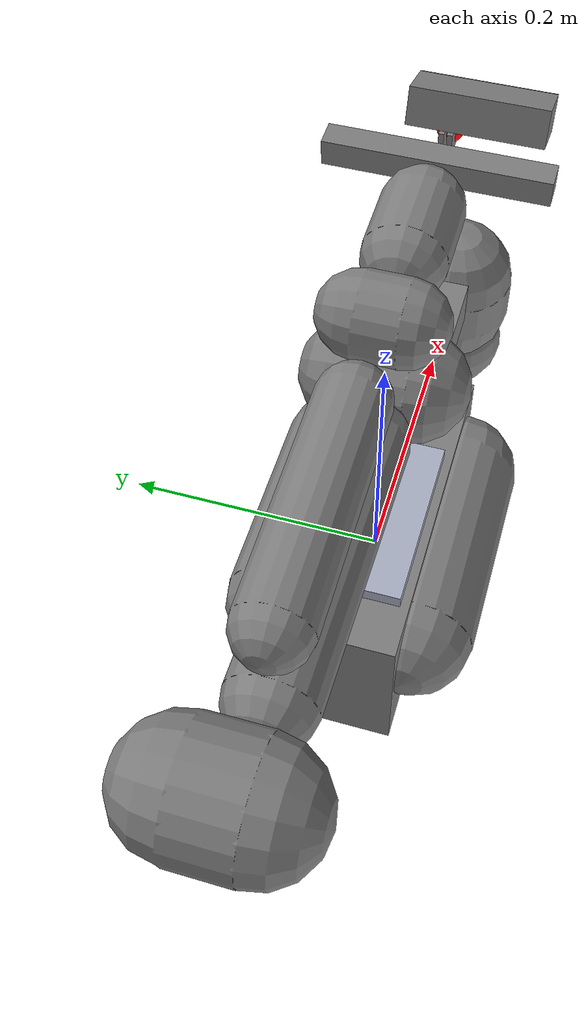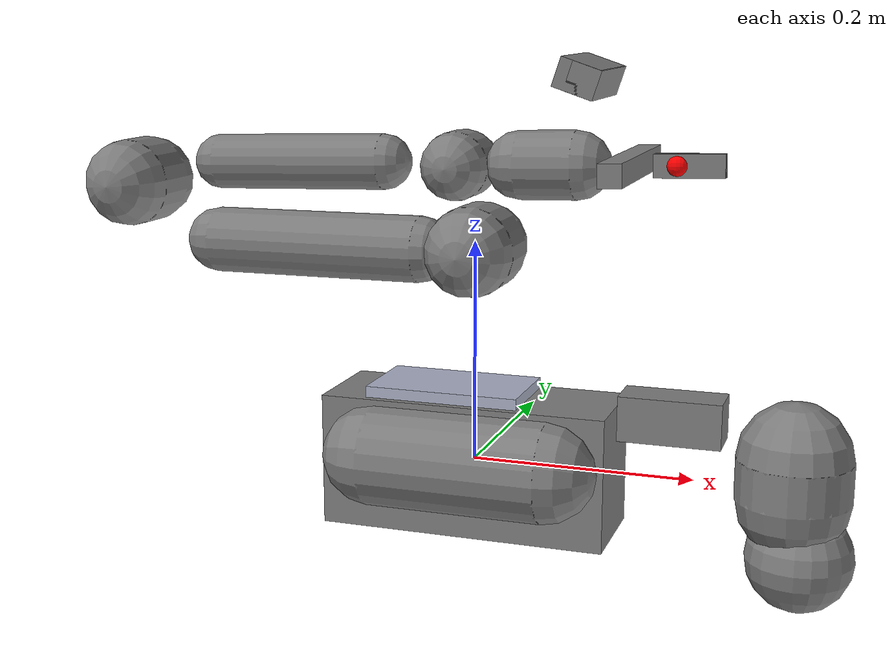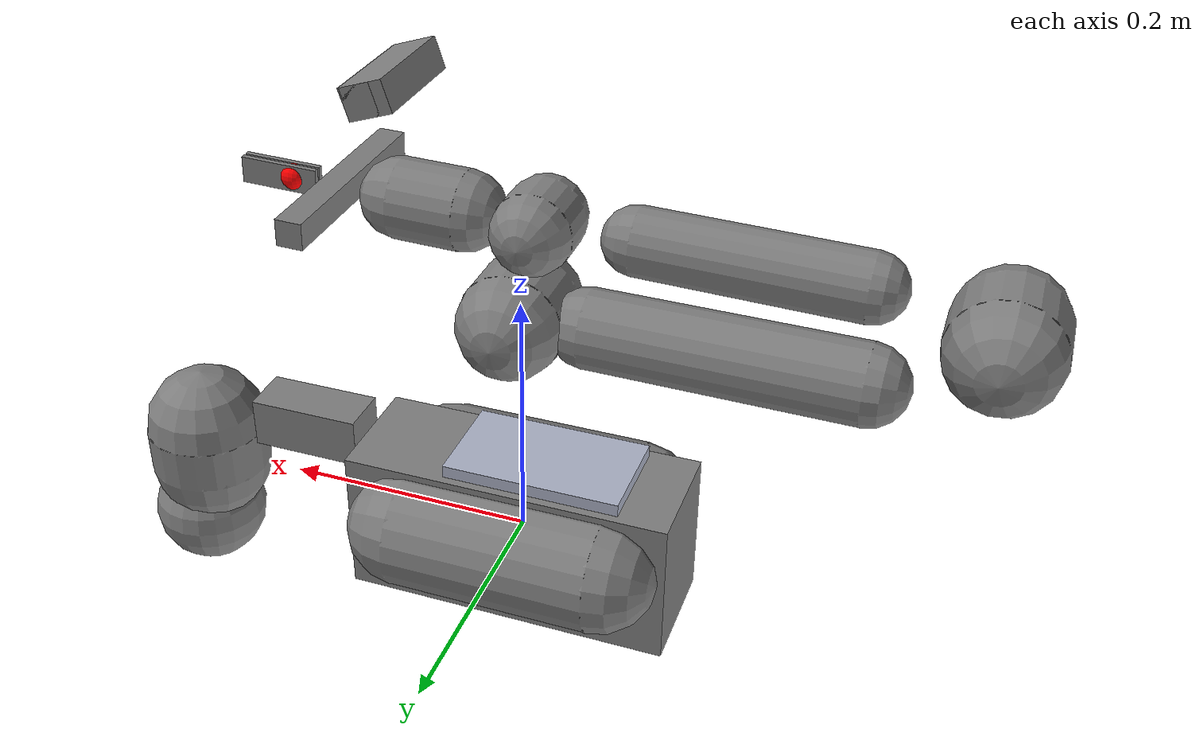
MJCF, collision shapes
<mujoco model="go2_description">
    <compiler angle="radian" autolimits="true"/>

    <option cone="elliptic" impratio="100"/>

    <default>
        <default class="go2">
            <joint axis="0 1 0"/>
            <geom friction="0.6" margin="0.001"/>

            <default class="visual">
                <geom type="mesh" contype="0" conaffinity="0" group="2"/>
            </default>
            <default class="collision">
                <geom group="3"/>
            </default>
        </default>

    </default>

    <asset>
        <material name="metal" rgba=".9 .95 .95 1"/>
        <material name="black" rgba="0 0 0 1"/>
        <material name="white" rgba="1 1 1 1"/>
        <material name="gray" rgba="0.671705 0.692426 0.774270 1"/>

        <mesh file="go2/assets/base_0.obj"/>
        <mesh file="go2/assets/base_1.obj"/>
        <mesh file="go2/assets/base_2.obj"/>
        <mesh file="go2/assets/base_3.obj"/>
        <mesh file="go2/assets/base_4.obj"/>
        <mesh name="base_link" file="piper_l/assets/base_link.STL"/>
        <mesh name="link1" file="piper_l/assets/link1.STL"/>
        <mesh name="link2" file="piper_l/assets/link2.STL"/>
        <mesh name="link3" file="piper_l/assets/link3.STL"/>
        <mesh name="link4" file="piper_l/assets/link4.STL"/>
        <mesh name="link5" file="piper_l/assets/link5.STL"/>
        <mesh name="link7" file="piper_l/assets/link7.STL"/>
        <mesh name="link8" file="piper_l/assets/link8.STL"/>
        <mesh name="gripper_base_100_v3" file="piper_l/assets/gripper_base_100_v3.STL"/>
        <mesh name="realsense_mid_stand_v2" content_type="model/stl" file="piper_l/assets/realsense_mid_stand_v2.STL"/>
    </asset>

    <worldbody>
        <body name="base" pos="0 0 0.0" childclass="go2">
            <inertial pos="0.021112 0 -0.005366" quat="-0.000543471 0.713435 -0.00173769 0.700719" mass="6.921"
                      diaginertia="0.107027 0.0980771 0.0244531"/>

            <geom mesh="base_0" material="black" class="visual"/>
            <geom mesh="base_1" material="black" class="visual"/>
            <geom mesh="base_2" material="black" class="visual"/>
            <geom mesh="base_3" material="white" class="visual"/>
            <geom mesh="base_4" material="gray" class="visual"/>
            <geom size="0.07 0.04 0.01" pos="-0.02 0.0 0.06" material="gray" type="box" class="visual"/>

            <geom name="base_collision1" size="0.13 0.04675 0.06" type="box" class="collision"/>
            <geom name="base_collision2" size="0.07 0.04 0.01" pos="-0.02 0.0 0.06" type="box" class="collision"/>
            <geom name="base_collision3" size="0.045 0.02 0.02" pos="0.18 0.0 0.055" type="box" class="collision"/>
            <geom name="base_collision4" size="0.045 0.08" pos="0.0 0.05 0.01" quat="0.707107 0 0.707107 0" type="capsule" class="collision"/>
            <geom name="base_collision5" size="0.045 0.08" pos="0.0 -0.05 0.01" quat="0.707107 0 0.707107 0" type="capsule" class="collision"/>

            <geom name="base_collision6" size="0.05 0.018" pos="0.285 0 0.01" type="capsule" class="collision"/>
            <geom name="base_collision7" size="0.047" pos="0.293 0 -0.06" class="collision"/>

            <joint axis="0 1 0" name="basepitch" pos="0 0 0" type="hinge" range="-0.2 0.2"/>
            <joint axis="0 0 1" name="basez" pos="0 0 0" type="slide" range="-0.1 0.1"/>

            <!-- piper_l arm (from piper_l/piper_l.xml) -->
            <geom pos="0 0 0.07" quat="0.999994 0.000457118 0.00346448 0" class="visual" material="gray" mesh="base_link"/>
            <body name="link1" pos="0.000852257 -0.00011245 0.192997" quat="0.999994 0.000457118 0.00346448 0">
              <inertial pos="-0.000108818 0.000607029 -0.00538686" quat="0.701411 0.712748 -0.000102414 -0.00362695" mass="0.71" diaginertia="0.000458361 0.000409985 0.000334505"/>
              <joint name="joint1" pos="0 0 0" axis="0 0 1" range="-2.618 2.618" armature="0.2380" damping="0.5000" frictionloss="0.5000"/>
              <geom class="visual" material="gray" mesh="link1"/>

              <body name="link2" quat="0.047971 -0.0479709 -0.705478 -0.705478">
                <inertial pos="0.258453 -0.00907882 0.00209824" quat="0.33951 0.630002 0.324014 0.618745" mass="1.16404" diaginertia="0.0162743 0.0162573 0.000956571"/>
                <joint name="joint2" pos="0 0 0" axis="0 0 1" range="0 3.14" armature="0.2069" damping="0.5000" frictionloss="0.5000"/>
                <geom class="visual" material="gray" mesh="link2"/>
                <geom name="link2_collision1" class="collision" size="0.04 0.02" quat="0.707107 0 0 0.707107" type="capsule"/>
                <geom name="link2_collision2" class="collision" size="0.03 0.1" pos="0.15 -0.025 0" quat="0.703163 0 0.703163 -0.105474" type="capsule"/>

                <body name="link3" pos="0.33823 0 0" quat="0.624016 0 0 -0.781412">
                  <inertial pos="-0.00810222 -0.192422 -0.000651809" quat="0.709181 0.703284 -0.0204559 0.0451178" mass="0.583343" diaginertia="0.00556992 0.00550867 0.000258804"/>
                  <joint name="joint3" pos="0 0 0" axis="0 0 1" range="-2.697 0" armature="0.3453" damping="0.5000" frictionloss="0.5000"/>
                  <geom class="visual" material="gray" mesh="link3"/>
                  <geom name="link3_collision1" class="collision" size="0.04 0.02" quat="0.707107 0 0 0.707107" type="capsule"/>
                  <geom name="link3_collision2" class="collision" size="0.025 0.08" pos="-0.01 -0.17 0" quat="0.706665 0.706665 0 0.0353333" type="capsule"/>

                  <body name="link4" pos="0 -0.32075 0" quat="0.705117 0.70512 0.0529832 0.0529834">
                    <inertial pos="0.00312889 -0.00168781 -0.00425666" quat="0.859761 0.0861299 -0.104595 0.492395" mass="0.366062" diaginertia="0.000174503 0.000169733 0.000142021"/>
                    <joint name="joint4" pos="0 0 0" axis="0 0 1" range="-1.832 1.832" armature="0.0010" damping="0.2497" frictionloss="0.1074"/>
                    <geom class="visual" material="gray" mesh="link4"/>
                    <geom name="link4_collision" class="collision" size="0.03 0.015" quat="0.707107 0.707107 0 0" type="capsule"/>

                    <body name="link5" quat="0.706222 -0.706225 -0.0353407 -0.0353405">
                      <inertial pos="0.00417769 -0.0639706 -0.00267944" quat="0.609413 0.425035 -0.377108 0.552947" mass="0.376242" diaginertia="0.000302186 0.000295139 0.000150851"/>
                      <joint name="joint5" pos="0 0 0" axis="0 0 1" range="-1.22 1.22" armature="0.0232" damping="0.1736" frictionloss="0.1433"/>
                      <geom class="visual" material="gray" mesh="link5"/>
                      <geom name="link5_collision" class="collision" size="0.03 0.025" pos="0 -0.08 0" quat="0.707107 0.707107 0 0" type="capsule"/>

                      <body name="link6" pos="0 -0.091 0" quat="0.707105 0.707108 0 0">
                        <inertial pos="0.0111527268 0.00269159034 0.0371316254" quat="0.491523877 0.525880573 -0.516820751 -0.463411494" mass="0.537494" diaginertia="0.000323982045 0.000453515785 0.000630547405"/>
                        <joint name="joint6" pos="0 0 0" axis="0 0 1" range="-3.14 3.14" armature="0.0010" damping="0.2864" frictionloss="0.0404"/>
                        <geom class="visual" pos="0.008 -0.002 0.064" quat="0.500398 -0.5 -0.499602 0.5" material="gray" mesh="gripper_base_100_v3"/>
                        <geom class="collision" size="0.082 0.01 0.01" pos="0 0 0.06" quat="0.500398 -0.5 -0.499602 0.5" type="box"/>

                        <!-- realsense stand (geometry only, mass is in the link6 inertial) -->
                        <geom pos="-0.034 -0.002 0.023" quat="0.000563312 -0.706825 0.707388 0.000562864" mesh="realsense_mid_stand_v2" class="visual"/>
                        <geom size="0.012525 0.045 0.0125" pos="-0.0740961 -0.03 0.03725" quat="0.819648 0 -0.572867 0" type="box" class="visual"/>
                        <geom name="link6_collision" size="0.017 0.045 0.0125" pos="-0.0760961 -0.03 0.032" quat="0.819648 0 -0.572867 0" type="box" class="collision"/>

                        <site name="attachment_site" size="0.01" pos="0 0 0.1" rgba="1 0 0 1" group="1"/>

                        <body name="link7" pos="0 0 0.13503" quat="0.707105 0.707108 0 0">
                          <inertial pos="0.000277817 -0.0467674 -0.0092103" quat="0.553273 0.439968 -0.46134 0.536174" mass="0.0264822" diaginertia="1.45133e-05 1.0004e-05 5.87021e-06"/>
                          <joint name="joint7" pos="0 0 0" axis="0 0 -1" type="slide" range="0 0.05" armature="0.0010" damping="0.0010" frictionloss="0.0010"/>
                          <geom class="visual" material="gray" mesh="link7"/>
                          <geom name="link7_collision" class="collision" size="0.01 0.03 0.002" pos="0 -0.025 -0.003" type="box"/>
                        </body>

                        <body name="link8" pos="0 0 0.13503" quat="0.707105 -0.707108 0 0">
                          <inertial pos="0.000277817 0.0467674 -0.0092103" quat="0.553273 0.439968 -0.46134 0.536174" mass="0.0264822" diaginertia="1.45133e-05 1.0004e-05 5.87021e-06"/>
                          <joint name="joint8" pos="0 0 0" axis="0 0 1" type="slide" range="-0.05 0" armature="0.0010" damping="0.0010" frictionloss="0.0010"/>
                          <geom class="visual" material="gray" mesh="link8"/>
                          <geom name="link8_collision" class="collision" size="0.01 0.03 0.002" pos="0 0.025 -0.003" type="box"/>
                        </body>

                      </body>
                    </body>
                  </body>
                </body>
              </body>
            </body>

        </body>
    </worldbody>

    <equality>
        <joint joint1="joint8" joint2="joint7" polycoef="0 -1 0 0 0"/>
    </equality>

    <keyframe>
        <key name="home" qpos="0 0 0 0 0 0 0 0 0.05 -0.05"/>
    </keyframe>
</mujoco>
